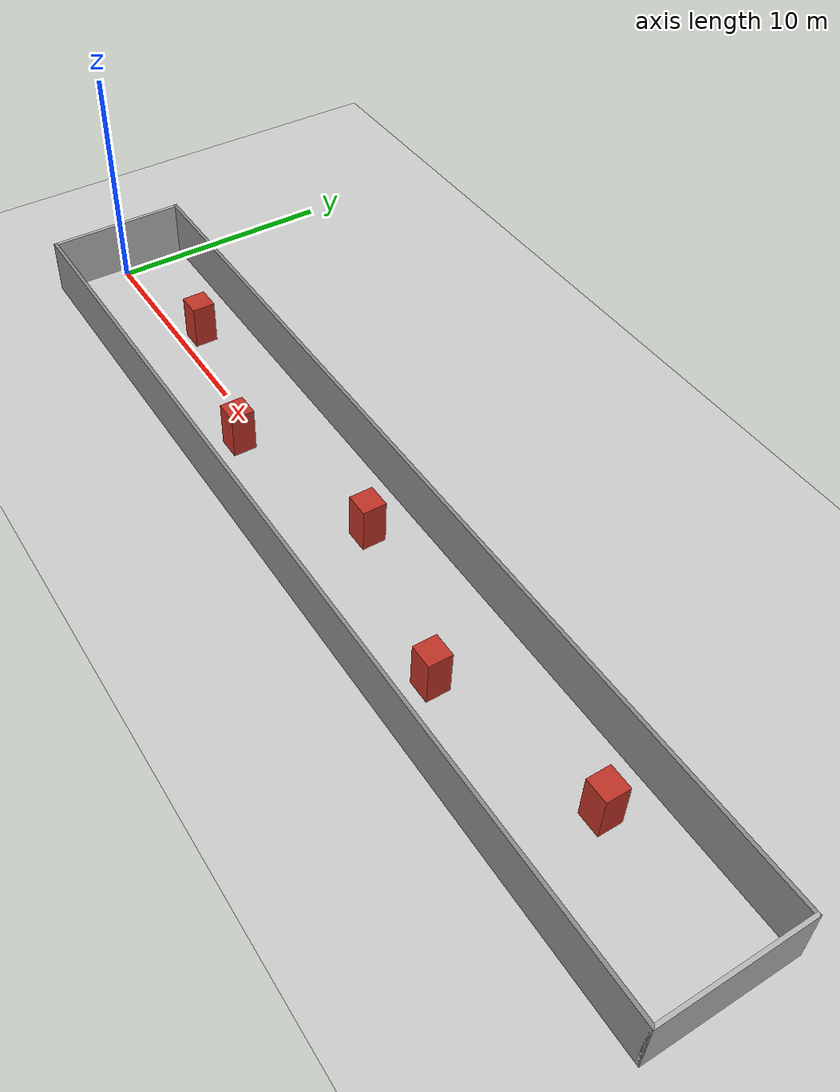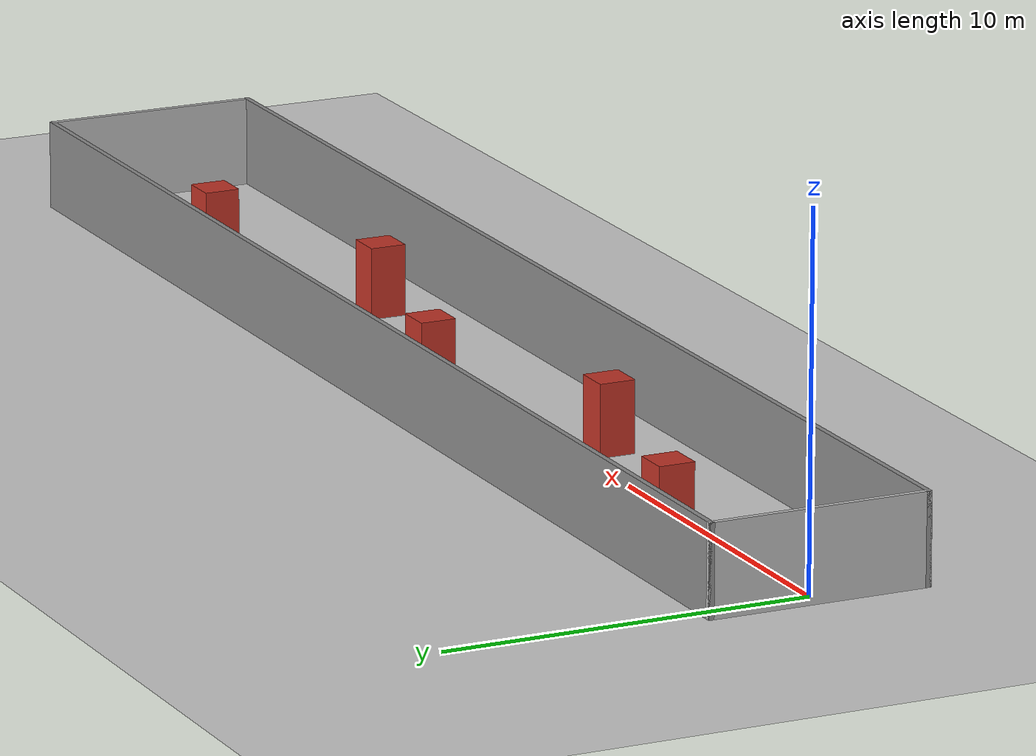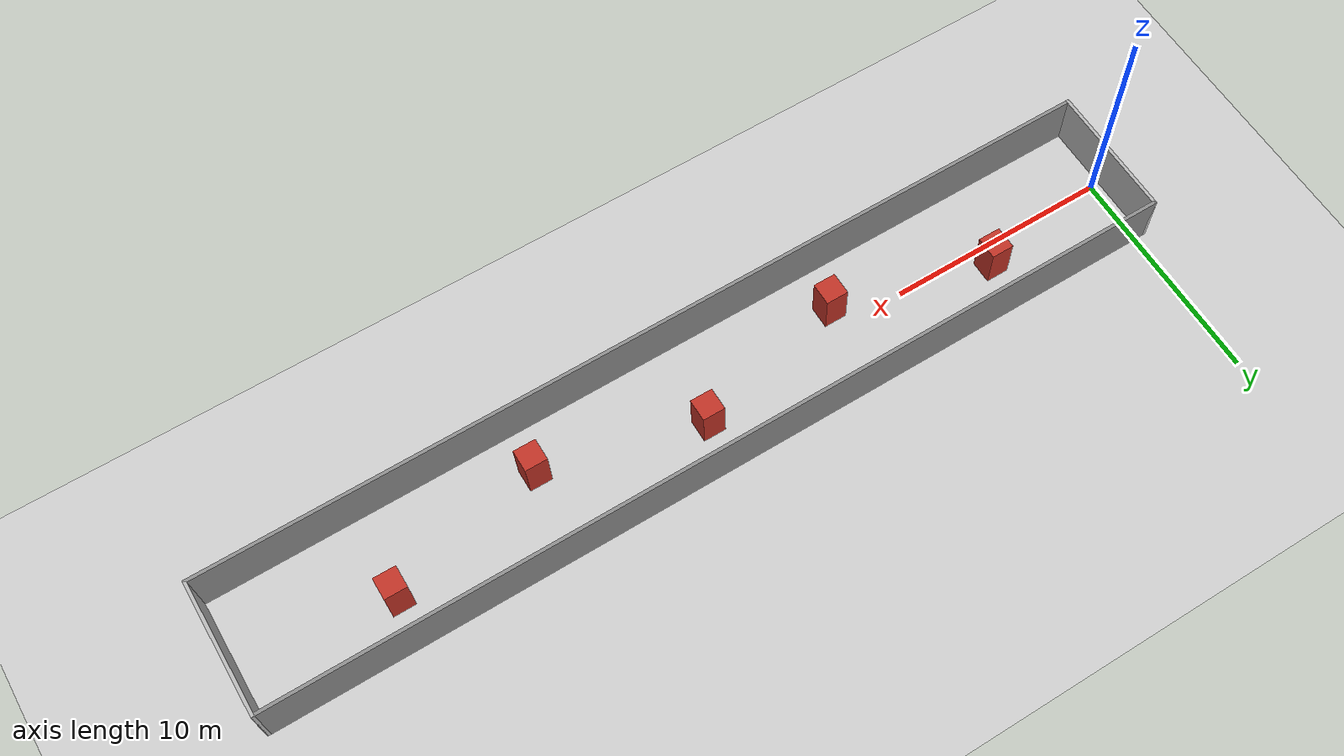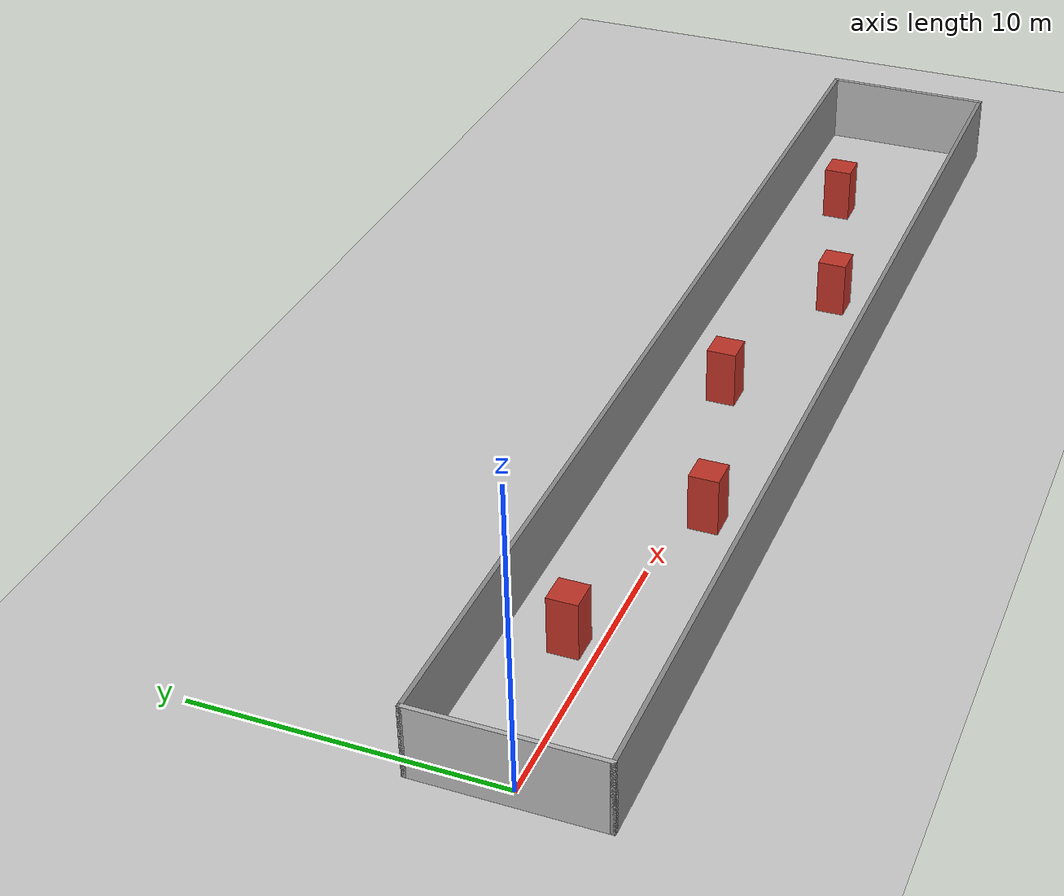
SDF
<?xml version="1.0"?>
<sdf version="1.6">
  <world name="corridor_baseline">
    <include><uri>model://ground_plane</uri></include>
    <include><uri>model://sun</uri></include>
    <gravity>0 0 -9.8</gravity>
    <physics type="ode">
      <max_step_size>0.001</max_step_size>
      <real_time_factor>1</real_time_factor>
      <real_time_update_rate>1000</real_time_update_rate>
      <ode>
        <solver><type>quick</type><iters>100</iters><sor>1.3</sor></solver>
        <constraints><cfm>0</cfm><erp>0.2</erp><contact_max_correcting_vel>100</contact_max_correcting_vel></constraints>
      </ode>
    </physics>

    <!-- 40 m by 6 m baseline corridor. The 1 m boxes alternate gently and
         leave at least 1.5 m usable passage for the 0.574 m Scout. -->
    <model name="baseline_bounds">
      <static>true</static>
      <link name="north_wall">
        <pose>20 3 1.25 0 0 0</pose>
        <collision name="collision"><geometry><box><size>41.15 0.15 2.5</size></box></geometry></collision>
        <visual name="visual"><geometry><box><size>41.15 0.15 2.5</size></box></geometry><material><ambient>0.55 0.55 0.55 1</ambient></material></visual>
      </link>
      <link name="south_wall">
        <pose>20 -3 1.25 0 0 0</pose>
        <collision name="collision"><geometry><box><size>41.15 0.15 2.5</size></box></geometry></collision>
        <visual name="visual"><geometry><box><size>41.15 0.15 2.5</size></box></geometry><material><ambient>0.55 0.55 0.55 1</ambient></material></visual>
      </link>
      <link name="west_wall">
        <pose>-0.5 0 1.25 0 0 0</pose>
        <collision name="collision"><geometry><box><size>0.15 6.15 2.5</size></box></geometry></collision>
        <visual name="visual"><geometry><box><size>0.15 6.15 2.5</size></box></geometry></visual>
      </link>
      <link name="east_wall">
        <pose>40.5 0 1.25 0 0 0</pose>
        <collision name="collision"><geometry><box><size>0.15 6.15 2.5</size></box></geometry></collision>
        <visual name="visual"><geometry><box><size>0.15 6.15 2.5</size></box></geometry></visual>
      </link>
    </model>

    <model name="baseline_box_1">
      <static>true</static><pose>6 0.9 1 0 0 0</pose>
      <link name="link">
        <collision name="collision"><geometry><box><size>1 1 2</size></box></geometry></collision>
        <visual name="visual"><geometry><box><size>1 1 2</size></box></geometry><material><ambient>0.75 0.2 0.15 1</ambient></material></visual>
      </link>
    </model>
    <model name="baseline_box_2">
      <static>true</static><pose>13 -0.9 1 0 0 0</pose>
      <link name="link">
        <collision name="collision"><geometry><box><size>1 1 2</size></box></geometry></collision>
        <visual name="visual"><geometry><box><size>1 1 2</size></box></geometry><material><ambient>0.75 0.2 0.15 1</ambient></material></visual>
      </link>
    </model>
    <model name="baseline_box_3">
      <static>true</static><pose>20 0.9 1 0 0 0</pose>
      <link name="link">
        <collision name="collision"><geometry><box><size>1 1 2</size></box></geometry></collision>
        <visual name="visual"><geometry><box><size>1 1 2</size></box></geometry><material><ambient>0.75 0.2 0.15 1</ambient></material></visual>
      </link>
    </model>
    <model name="baseline_box_4">
      <static>true</static><pose>27 -0.9 1 0 0 0</pose>
      <link name="link">
        <collision name="collision"><geometry><box><size>1 1 2</size></box></geometry></collision>
        <visual name="visual"><geometry><box><size>1 1 2</size></box></geometry><material><ambient>0.75 0.2 0.15 1</ambient></material></visual>
      </link>
    </model>
    <model name="baseline_box_5">
      <static>true</static><pose>34 0.9 1 0 0 0</pose>
      <link name="link">
        <collision name="collision"><geometry><box><size>1 1 2</size></box></geometry></collision>
        <visual name="visual"><geometry><box><size>1 1 2</size></box></geometry><material><ambient>0.75 0.2 0.15 1</ambient></material></visual>
      </link>
    </model>
  </world>
</sdf>
